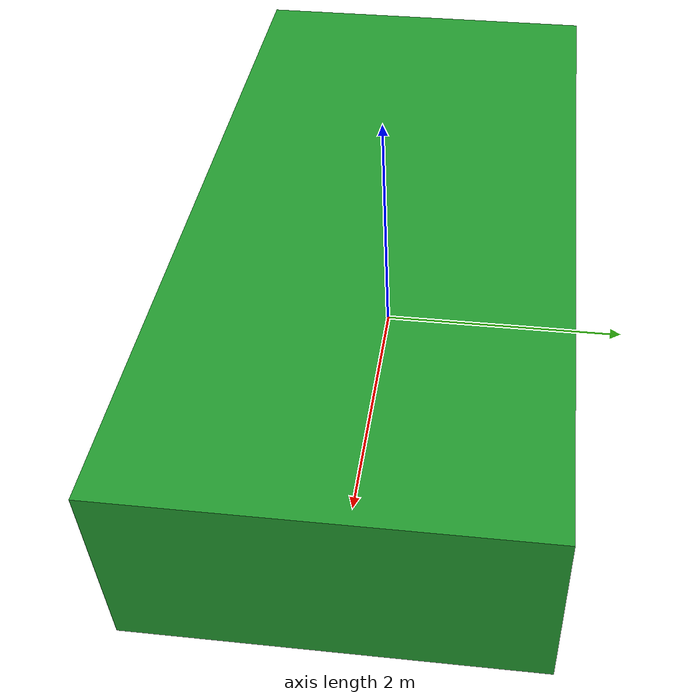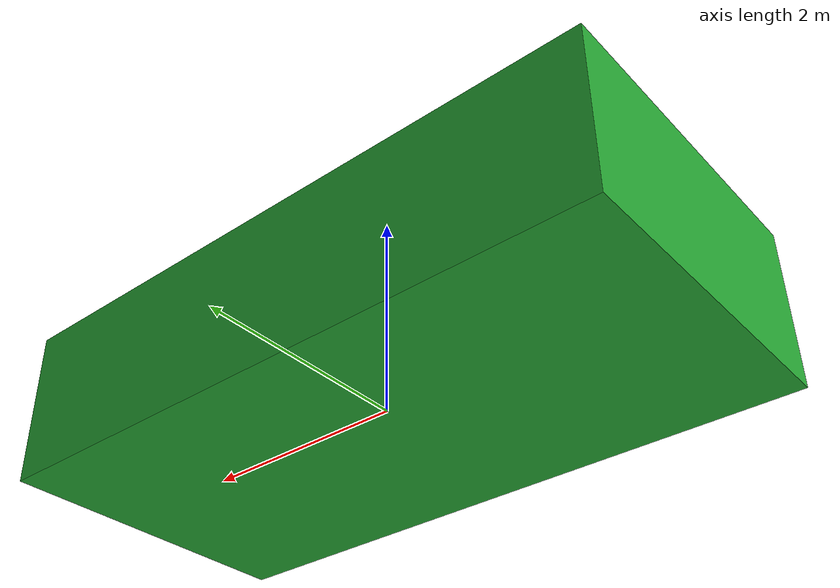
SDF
<?xml version='1.0'?>
<sdf version='1.6'>
  <model name='tank_target'>
    <pose>0 0 0.5 0 0 0</pose>
    <static>true</static>
    <link name='link'>
      <visual name='visual'>
        <geometry>
          <box>
            <size>6.0 3.0 1.5</size>
          </box>
        </geometry>
        <material>
          <script>
            <uri>file://media/materials/scripts/gazebo.material</uri>
            <name>Gazebo/Green</name>
          </script>
        </material>
      </visual>
      <collision name='collision'>
        <geometry>
          <box>
            <size>6.0 3.0 1.5</size>
          </box>
        </geometry>
      </collision>
    </link>
  </model>
</sdf>
